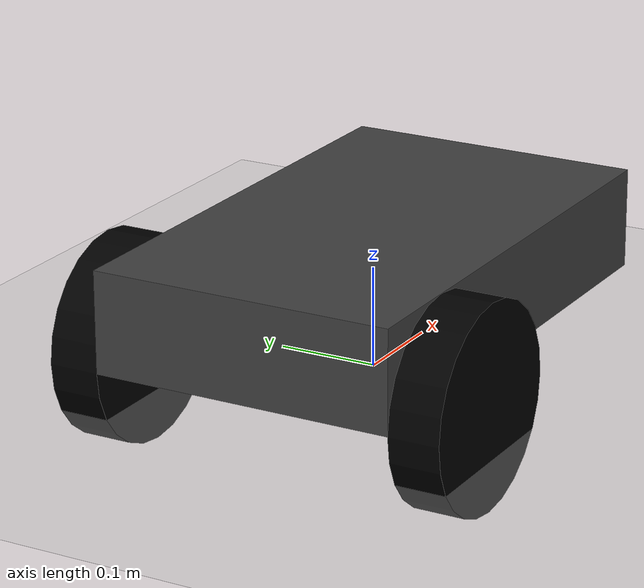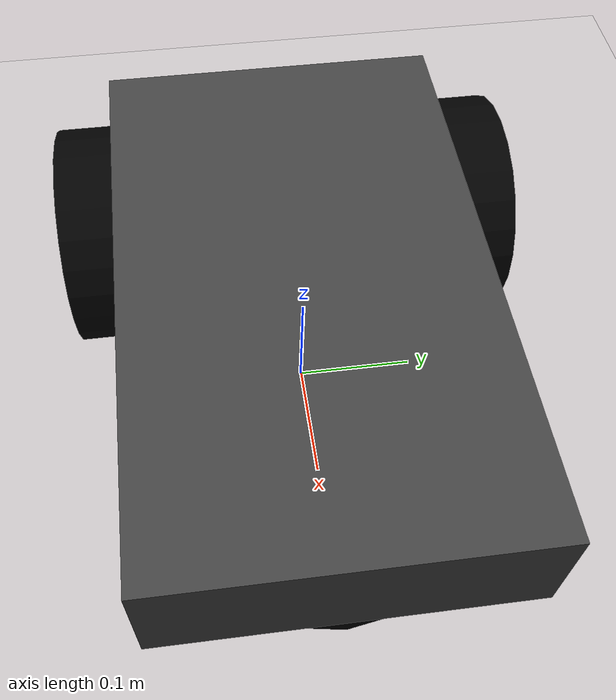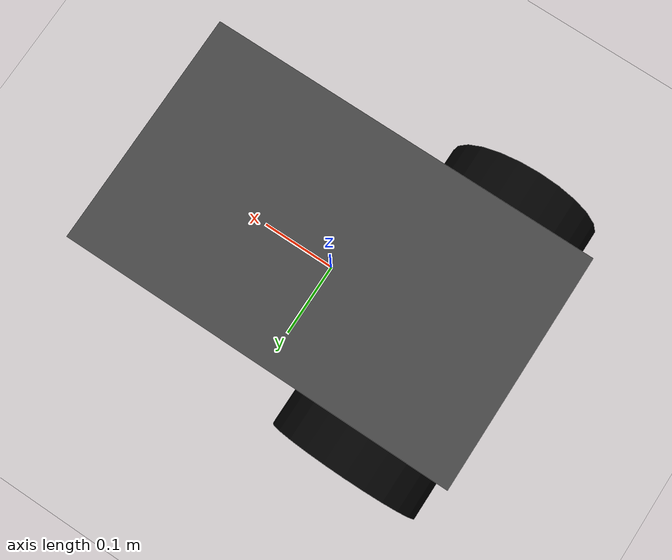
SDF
<?xml version="1.0"?>
<sdf version="1.9">
  <world name="test_world">
    <physics name="1ms" type="ignore">
      <max_step_size>0.001</max_step_size>
      <real_time_factor>1.0</real_time_factor>
    </physics>

    <plugin filename="gz-sim-physics-system" name="gz::sim::systems::Physics"/>
    <plugin filename="gz-sim-user-commands-system" name="gz::sim::systems::UserCommands"/>
    <plugin filename="gz-sim-scene-broadcaster-system" name="gz::sim::systems::SceneBroadcaster"/>

    <light type="directional" name="sun">
      <cast_shadows>true</cast_shadows>
      <pose>0 0 10 0 0 0</pose>
      <diffuse>0.8 0.8 0.8 1</diffuse>
      <specular>0.2 0.2 0.2 1</specular>
      <attenuation>
        <range>1000</range>
        <constant>0.9</constant>
        <linear>0.01</linear>
        <quadratic>0.001</quadratic>
      </attenuation>
      <direction>-0.5 0.1 -0.9</direction>
    </light>

    <model name="ground_plane">
      <static>true</static>
      <link name="link">
        <collision name="collision">
          <geometry>
            <plane>
              <normal>0 0 1</normal>
            </plane>
          </geometry>
        </collision>
        <visual name="visual">
          <geometry>
            <plane>
              <normal>0 0 1</normal>
              <size>100 100</size>
            </plane>
          </geometry>
          <material>
            <ambient>0.8 0.8 0.8 1</ambient>
            <diffuse>0.8 0.8 0.8 1</diffuse>
          </material>
        </visual>
      </link>
    </model>

    <include>
      <uri>file://home/sohamk3901/mrta_ws/src/mrta_simulation/models/simple_turtlebot</uri>
      <name>test_robot</name>
      <pose>0 0 0.1 0 0 0</pose>
    </include>

  </world>
</sdf>

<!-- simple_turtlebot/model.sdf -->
<sdf version="1.9">
    <model name="differential_drive_robot">

        <link name="base_footprint"/>

        <joint name="base_joint" type="fixed">
            <parent>base_footprint</parent>
            <child>body_link</child>
            <pose>0 0 0.15 0 0 0</pose>
        </joint>

        <link name="body_link">
            <inertial>
                <mass>10.0</mass>
                <inertia>
                    <ixx>0.083</ixx><ixy>0</ixy><ixz>0</ixz>
                    <iyy>0.216</iyy><iyz>0</iyz><izz>0.283</izz>
                </inertia>
            </inertial>
            <visual name="visual">
                <geometry>
                    <box><size>0.5 0.3 0.1</size></box>
                </geometry>
                <material>
                    <ambient>0.25 0.25 0.25 1</ambient>
                    <diffuse>0.25 0.25 0.25 1</diffuse>
                </material>
            </visual>
            <collision name="collision">
                <geometry>
                    <box><size>0.5 0.3 0.1</size></box>
                </geometry>
            </collision>
        </link>

        <joint name="left_wheel_joint" type="revolute">
            <parent>body_link</parent>
            <child>left_wheel_link</child>
            <pose relative_to="body_link">-0.15 0.175 -0.05 0 0 0</pose>
            <axis>
                <xyz>0 1 0</xyz>
                <limit>
                    <effort>100</effort>
                    <velocity>10.0</velocity>
                </limit>
                <dynamics>
                    <damping>0.1</damping>
                    <friction>0.1</friction>
                </dynamics>
            </axis>
        </joint>

        <link name="left_wheel_link">
            <pose relative_to="left_wheel_joint">0 0 0 1.5708 0 0</pose>
            <inertial>
                <mass>2.0</mass>
                <inertia>
                    <ixx>0.0054</ixx><ixy>0</ixy><ixz>0</ixz>
                    <iyy>0.0054</iyy><iyz>0</iyz><izz>0.01</izz>
                </inertia>
            </inertial>
            <visual name="visual">
                <geometry>
                    <cylinder><radius>0.1</radius><length>0.05</length></cylinder>
                </geometry>
                <material><ambient>0 0 0 1</ambient><diffuse>0 0 0 1</diffuse></material>
            </visual>
            <collision name="collision">
                <geometry>
                    <cylinder><radius>0.1</radius><length>0.05</length></cylinder>
                </geometry>
                <surface>
                    <friction><ode><mu>1.0</mu><mu2>1.0</mu2></ode></friction>
                </surface>
            </collision>
        </link>

        <joint name="right_wheel_joint" type="revolute">
            <parent>body_link</parent>
            <child>right_wheel_link</child>
            <pose relative_to="body_link">-0.15 -0.175 -0.05 0 0 0</pose>
            <axis>
                <xyz>0 1 0</xyz>
                <limit>
                    <effort>100</effort>
                    <velocity>10.0</velocity>
                </limit>
                <dynamics>
                    <damping>0.1</damping>
                    <friction>0.1</friction>
                </dynamics>
            </axis>
        </joint>

        <link name="right_wheel_link">
            <pose relative_to="right_wheel_joint">0 0 0 1.5708 0 0</pose>
            <inertial>
                <mass>2.0</mass>
                <inertia>
                    <ixx>0.0054</ixx><ixy>0</ixy><ixz>0</ixz>
                    <iyy>0.0054</iyy><iyz>0</iyz><izz>0.01</izz>
                </inertia>
            </inertial>
            <visual name="visual">
                <geometry>
                    <cylinder><radius>0.1</radius><length>0.05</length></cylinder>
                </geometry>
                <material><ambient>0 0 0 1</ambient><diffuse>0 0 0 1</diffuse></material>
            </visual>
            <collision name="collision">
                <geometry>
                    <cylinder><radius>0.1</radius><length>0.05</length></cylinder>
                </geometry>
                <surface>
                    <friction><ode><mu>1.0</mu><mu2>1.0</mu2></ode></friction>
                </surface>
            </collision>
        </link>

        <joint name="caster_joint" type="fixed">
            <parent>body_link</parent>
            <child>caster_link</child>
            <pose relative_to="body_link">0.15 0 -0.05 0 0 0</pose>
        </joint>

        <link name="caster_link">
            <pose relative_to="caster_joint">0 0 0 0 0 0</pose>
            <inertial>
                <mass>0.5</mass>
                <inertia>
                    <ixx>0.002</ixx><ixy>0</ixy><ixz>0</ixz>
                    <iyy>0.002</iyy><iyz>0</iyz><izz>0.002</izz>
                </inertia>
            </inertial>
            <visual name="visual">
                <geometry>
                    <sphere><radius>0.1</radius></sphere>
                </geometry>
                <material><ambient>0 0 0 1</ambient><diffuse>0 0 0 1</diffuse></material>
            </visual>
            <collision name="collision">
                <geometry>
                    <sphere><radius>0.1</radius></sphere>
                </geometry>
                <surface>
                    <friction><ode><mu>0.01</mu><mu2>0.01</mu2></ode></friction>
                </surface>
            </collision>
        </link>

        <plugin filename="gz-sim-diff-drive-system" name="gz::sim::systems::DiffDrive">
            <right_joint>right_wheel_joint</right_joint>
            <left_joint>left_wheel_joint</left_joint>
            <wheel_separation>0.35</wheel_separation>
            <wheel_radius>0.1</wheel_radius>
            <max_linear_acceleration>10</max_linear_acceleration>
            <odom_publish_frequency>100</odom_publish_frequency>
            <topic>cmd_vel</topic>
            <odom_topic>odometry</odom_topic>
        </plugin>

        <plugin filename="gz-sim-joint-state-publisher-system" name="gz::sim::systems::JointStatePublisher">
            <topic>joint_states</topic>
            <joint_name>right_wheel_joint</joint_name>
            <joint_name>left_wheel_joint</joint_name>
        </plugin>

        <plugin filename="gz-sim-pose-publisher-system" name="gz::sim::systems::PosePublisher">
            <publish_link_pose>true</publish_link_pose> <publish_visual_pose>false</publish_visual_pose>
            <publish_collision_pose>false</publish_collision_pose>
            <publish_sensor_pose>false</publish_sensor_pose>

            <publish_nested_model_pose>true</publish_nested_model_pose> <use_pose_vector_msg>true</use_pose_vector_msg>
            <static_publisher>false</static_publisher>
            <static_update_frequency>100</static_update_frequency>
        </plugin>

    </model>
</sdf>
